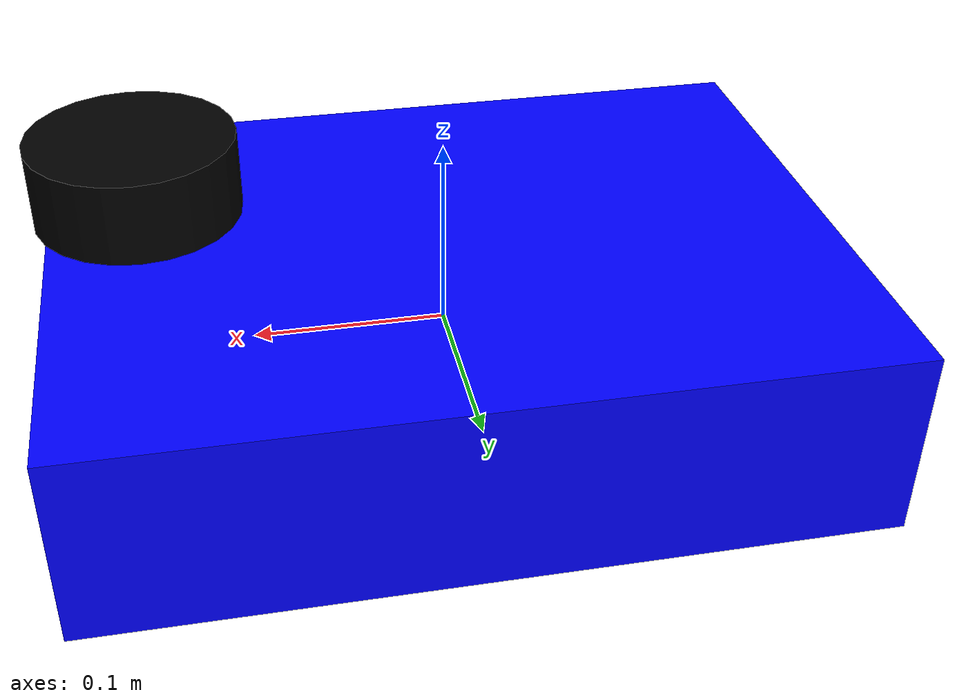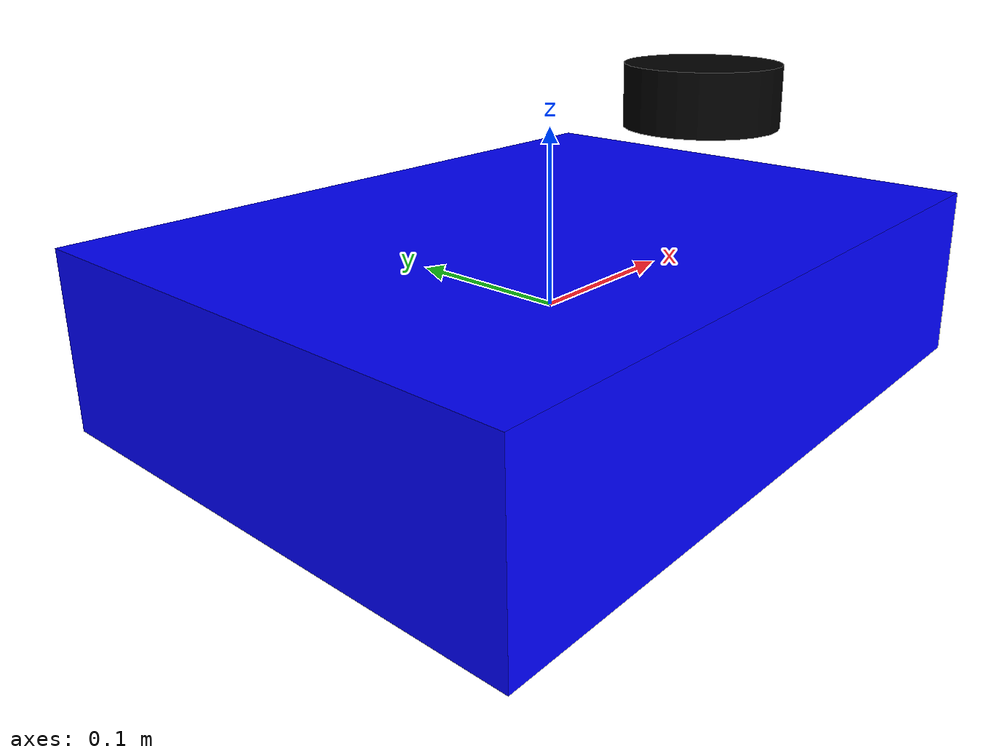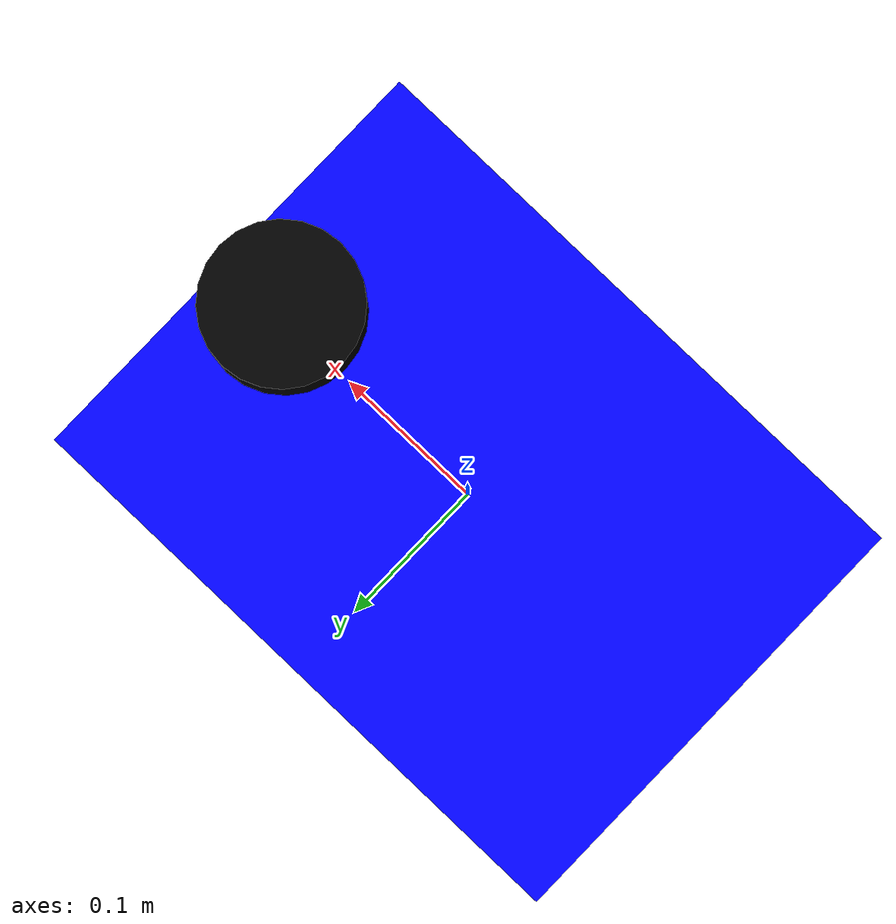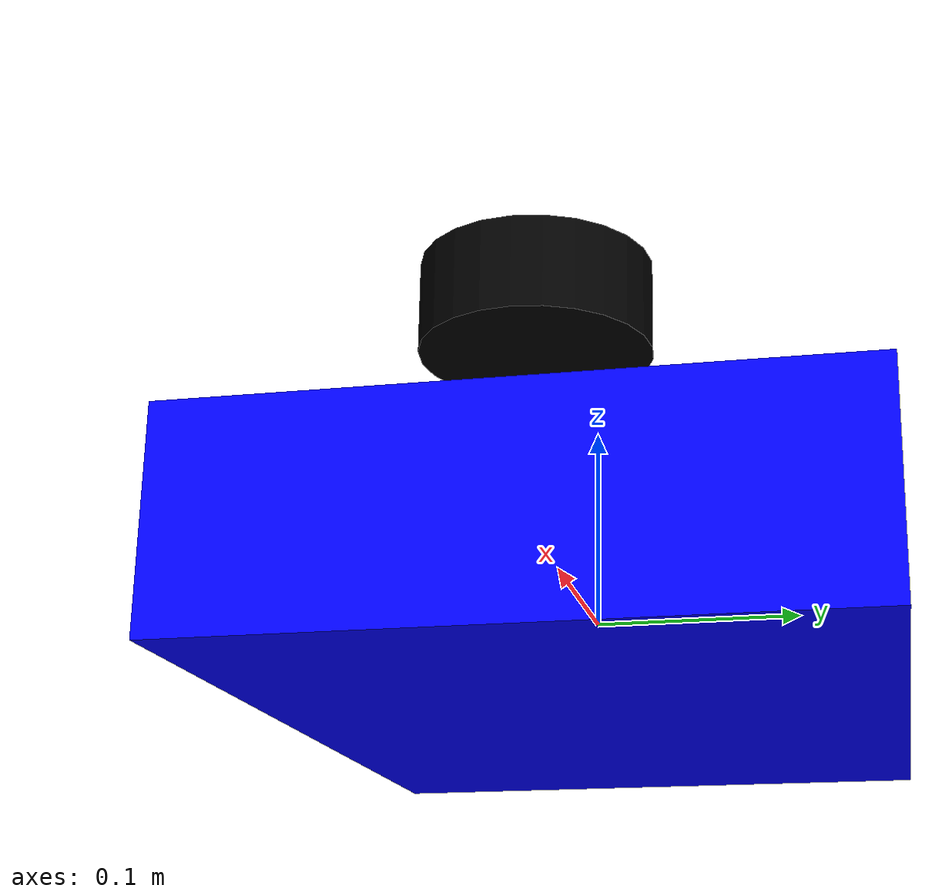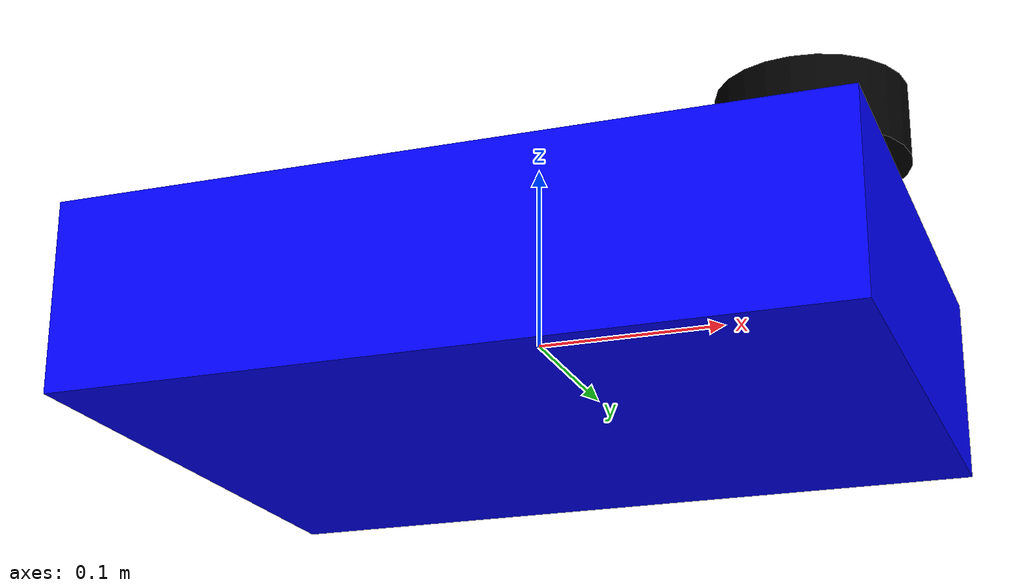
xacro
<?xml version="1.0"?>
<robot name="my_robot" xmlns:xacro="http://www.ros.org/wiki/xacro">

  <!-- 기준 좌표계 (Base Link) -->
  <link name="base_link">
    <visual>
      <geometry>
        <box size="0.4 0.3 0.1"/> <!-- 가로 40cm, 세로 30cm, 높이 10cm 상자 -->
      </geometry>
      <material name="blue">
        <color rgba="0 0 1 1"/>
      </material>
    </visual>
  </link>

  <!-- 라이다 센서 Link -->
  <link name="laser_frame">
    <visual>
      <geometry>
        <cylinder radius="0.05" length="0.04"/> <!-- 원통형 라이다 -->
      </geometry>
      <material name="black">
        <color rgba="0 0 0 1"/>
      </material>
    </visual>
  </link>

  <!-- Joint (base_link 기준 앞으로 15cm, 위로 10cm 위치에 라이다 고정) -->
  <joint name="laser_joint" type="fixed">
    <parent link="base_link"/>
    <child link="laser_frame"/>
    <origin xyz="0.15 0.0 0.1" rpy="0 0 0"/>
  </joint>

</robot>
